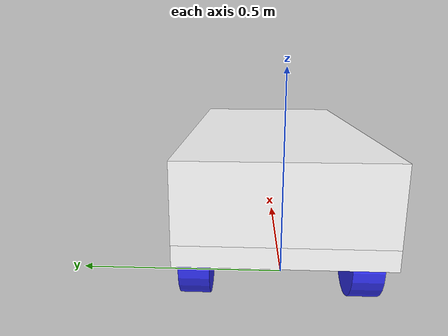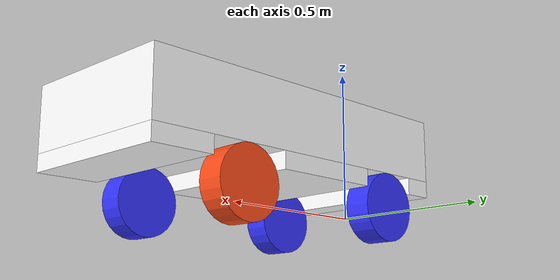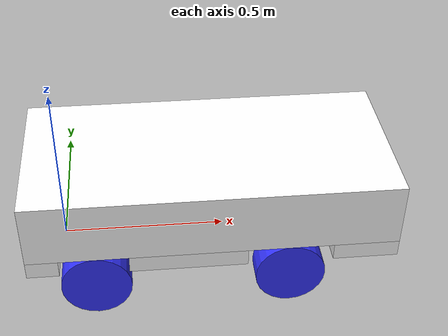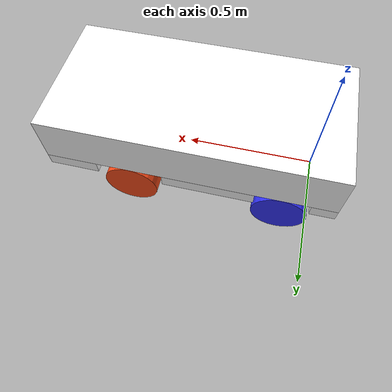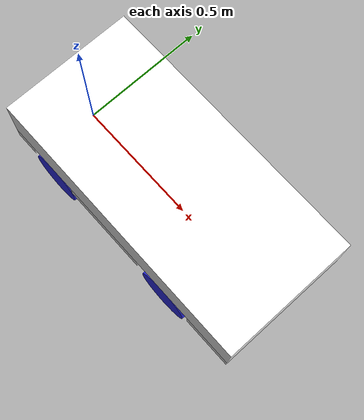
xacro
<?xml version="1.0"?>
<robot xmlns:xacro="http://www.ros.org/wiki/xacro" >

    <xacro:include filename="inertial_macros.xacro"/>

    <material name="white">
        <color rgba="1 1 1 1" />
    </material>

    <material name="orange">
        <color rgba="1 0.3 0.1 1"/>
    </material>

    <material name="blue">
        <color rgba="0.2 0.2 1 1"/>
    </material>

    <material name="black">
        <color rgba="0 0 0 1"/>
    </material>
    <material name="red">
        <color rgba="1 0 0 1"/>
    </material>

    <!-- BASE LINK -->

    <link name="base_link">

    </link>

    <!-- CHASSIS LINK -->

    <joint name="chassis_joint" type="fixed">
        <parent link="base_link"/>
        <child link="chassis"/>
        <origin xyz="-0.1 0 0"/>
    </joint>

    <link name="chassis">
        <visual>
            <origin xyz="0.55 0 0.20375"/>
            <geometry>
                <box size="1.10 0.52 0.1975"/>
            </geometry>
            <material name="white"/>
        </visual>
        <visual>
            <origin xyz="0.0475 0 0.07875"/>
            <geometry>
                <box size="0.095 0.52 0.0525"/>
            </geometry>
            <material name="white"/>
        </visual>
        <visual>
            <origin xyz="0.475 0 0.07875"/>
            <geometry>
                <box size="0.35 0.52 0.0525"/>
            </geometry>
            <material name="white"/>
        </visual>
        <visual>
            <origin xyz="1.0025 0 0.07875"/>
            <geometry>
                <box size="0.195 0.52 0.0525"/>
            </geometry>
            <material name="white"/>
        </visual>

        <collision>
            <origin xyz="0.55 0 0.20375"/>
            <geometry>
                <box size="1.10 0.52 0.1975"/>
            </geometry>
        </collision>
        <collision>
            <origin xyz="0.0475 0 0.07875"/>
            <geometry>
                <box size="0.095 0.52 0.0525"/>
            </geometry>
        </collision>
        <collision>
            <origin xyz="0.475 0 0.07875"/>
            <geometry>
                <box size="0.35 0.52 0.0525"/>
            </geometry>
        </collision>
        <collision>
            <origin xyz="1.0025 0 0.07875"/>
            <geometry>
                <box size="0.195 0.52 0.0525"/>
            </geometry>
        </collision>
        <xacro:inertial_box mass="5.0" x="1.10" y="0.52" z="0.25">
            <origin xyz="0.55 0 0.125" rpy="0 0 0"/>
        </xacro:inertial_box>
    </link>
    <gazebo reference="chassis">
        <material>Gazebo/White</material>
    </gazebo>

    <!-- REAR LEFT WHEEL LINK -->

    <joint name="rear_left_wheel_joint" type="continuous">
        <parent link="chassis"/>
        <child link="rear_left_wheel"/>
        <origin xyz="0.20 0.22 0" rpy="-${pi/2} 0 0" />
        <axis xyz="0 0 1"/>
    </joint>

    <link name="rear_left_wheel">
        <visual>
            <geometry>
                <cylinder radius="0.105" length="0.08"/>
            </geometry>
            <material name="blue"/>
        </visual>
        <collision>
            <geometry>
                <cylinder radius="0.105" length="0.08"/>
            </geometry>
        </collision>
        <xacro:inertial_cylinder mass="1.0" length="0.08" radius="0.105">
            <origin xyz="0 0 0" rpy="0 0 0"/>
        </xacro:inertial_cylinder>
    </link>
    <gazebo reference="rear_left_wheel">
        <material>Gazebo/Black</material>
    </gazebo>
    <!-- REAR RIGHT WHEEL LINK -->

    <joint name="rear_right_wheel_joint" type="continuous">
        <parent link="chassis"/>
        <child link="rear_right_wheel"/>
        <origin xyz="0.20 -0.22 0"  rpy="${pi/2} 0 0" />
        <axis xyz="0 0 -1"/>
    </joint>

    <link name="rear_right_wheel">
        <visual>
            <geometry>
                <cylinder radius="0.105" length="0.08"/>
            </geometry>
            <material name="blue"/>
        </visual>
        <collision>
            <geometry>
                <cylinder radius="0.105" length="0.08"/>
            </geometry>
        </collision>
        <xacro:inertial_cylinder mass="1.0" length="0.08" radius="0.105">
            <origin xyz="0 0 0" rpy="0 0 0"/>
        </xacro:inertial_cylinder>
    </link>
    <gazebo reference="rear_right_wheel">
        <material>Gazebo/Black</material>
    </gazebo>
    <!-- FRONT LEFT STEERING JOINT -->
    <joint name="front_left_steering_joint" type="revolute">
        <parent link="chassis"/>
        <child link="front_left_steering"/>
        <origin xyz="0.78 0.22 0"/>
        <axis xyz="0 0 1"/>
        <limit lower="-0.31416" upper="0.31416" effort="1" velocity="1"/>

    </joint>
    <link name="front_left_steering">
    <visual>
        <origin xyz="0 0 0"/>
        <geometry>
        <box size="0.001 0.001 0.001"/>
        </geometry>
        <material name="black"/>
    </visual>
    <collision>
        <origin xyz="0 0 0"/>
        <geometry>
        <box size="0.001 0.001 0.001"/>
        </geometry>
    </collision>
    <inertial>
        <mass value="0.001"/>
        <inertia ixx="1e-7" ixy="0.0" ixz="0.0" iyy="1e-7" iyz="0.0" izz="1e-7"/>
    </inertial>
    </link>

    <!-- FRONT LEFT WHEEL ROLLING JOINT -->
    <joint name="front_left_wheel_joint" type="continuous">
        <parent link="front_left_steering"/>
        <child link="front_left_wheel"/>
        <origin xyz="0 0 0" rpy="-${pi/2} 0 0"/>
        <axis xyz="0 0 1"/>
    </joint>
    <link name="front_left_wheel">
        <visual>
            <geometry>
                <cylinder radius="0.105" length="0.08"/>
            </geometry>
            <material name="orange"/>
        </visual>
        <collision>
            <geometry>
                <cylinder radius="0.105" length="0.08"/>
            </geometry>
        </collision>
        <xacro:inertial_cylinder mass="1.0" length="0.08" radius="0.105">
            <origin xyz="0 0 0" rpy="0 0 0"/>
        </xacro:inertial_cylinder>
    </link>
    <gazebo reference="front_left_wheel">
        <material>Gazebo/Black</material>
        <mul1 value="0.001"/>
        <mul2 value="0.001"/>
    </gazebo>
    <!-- FRONT RIGHT STEERING JOINT -->
    <joint name="front_right_steering_joint" type="revolute">
        <parent link="chassis"/>
        <child link="front_right_steering"/>
        <origin xyz="0.78 -0.22 0"/>
        <axis xyz="0 0 1"/>
        <limit lower="-0.31416" upper="0.31416" effort="1" velocity="1"/>

    </joint>
    <link name="front_right_steering">
    <visual>
        <origin xyz="0 0 0"/>
        <geometry>
        <box size="0.001 0.001 0.001"/>
        </geometry>
        <material name="black"/>
    </visual>
    <collision>
        <origin xyz="0 0 0"/>
        <geometry>
        <box size="0.001 0.001 0.001"/>
        </geometry>
    </collision>
    <inertial>
        <mass value="0.001"/>
        <inertia ixx="1e-7" ixy="0.0" ixz="0.0" iyy="1e-7" iyz="0.0" izz="1e-7"/>
    </inertial>
    </link>

    <!-- FRONT RIGHTWHEEL ROLLING JOINT -->
    <joint name="front_right_wheel_joint" type="continuous">
        <parent link="front_right_steering"/>
        <child link="front_right_wheel"/>
        <origin xyz="0 0 0" rpy="${pi/2} 0 0"/>
        <axis xyz="0 0 1"/>
    </joint>
    <link name="front_right_wheel">
        <visual>
            <geometry>
                <cylinder radius="0.105" length="0.08"/>
            </geometry>
            <material name="blue"/>
        </visual>
        <collision>
            <geometry>
                <cylinder radius="0.105" length="0.08"/>
            </geometry>
        </collision>
        <xacro:inertial_cylinder mass="1.0" length="0.08" radius="0.105">
            <origin xyz="0 0 0" rpy="0 0 0"/>
        </xacro:inertial_cylinder>
    </link>
    <gazebo reference="front_right_wheel">
        <material>Gazebo/Black</material>
        <mul1 value="0.001"/>
        <mul2 value="0.001"/>
    </gazebo>
</robot>
